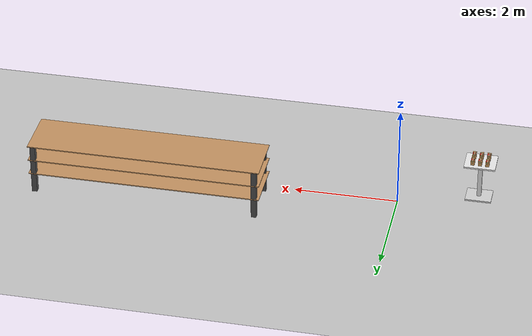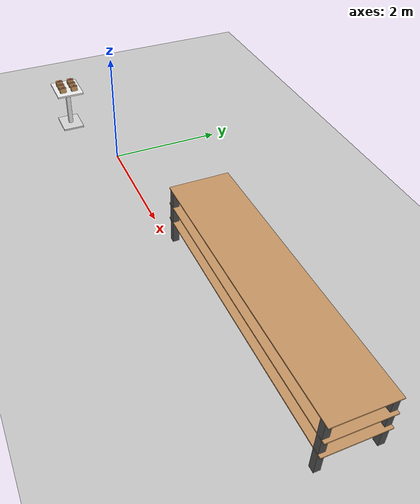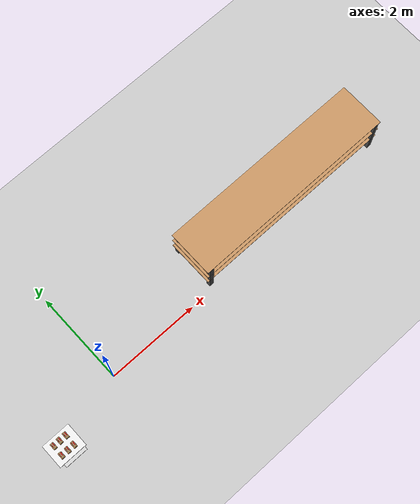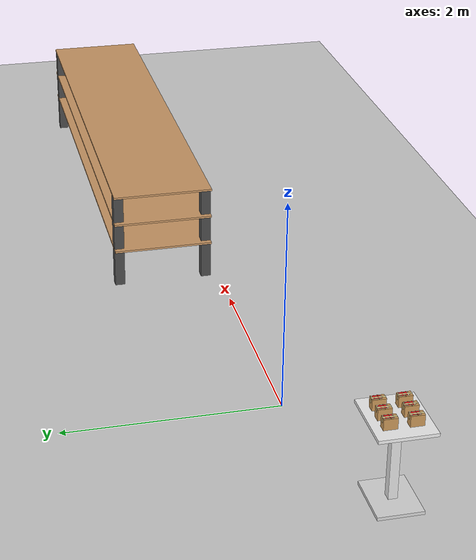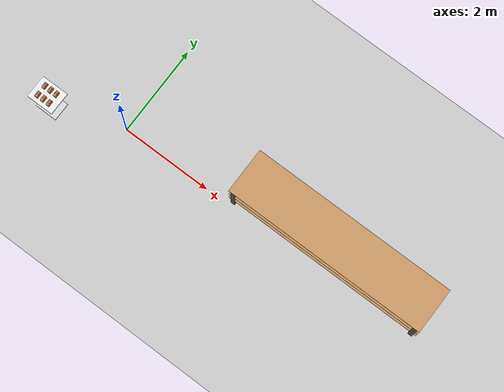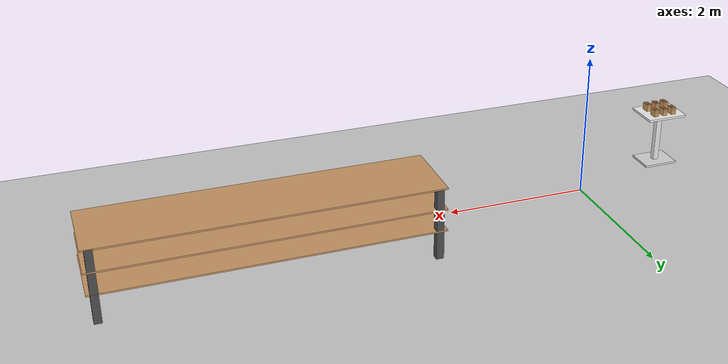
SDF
<sdf version="1.6">
 <world name="default">
  <scene>
   <shadows>true</shadows>
   <ambient>0.5 0.5 0.55 1</ambient>
   <background>0.53 0.67 0.82 1</background>
   <grid>false</grid>
  </scene>
  <model name="drop_shelf">
   <static>true</static>
   <pose>4.73156 0.57943 0 0 0 0</pose>
   <link name="tier_1">
    <pose>0 0 0.4 0 0 0</pose>
    <visual name="visual">
     <geometry><box><size>4.5 1.0 0.02</size></box></geometry>
     <material><ambient>0.8 0.6 0.4 1</ambient><diffuse>0.8 0.6 0.4 1</diffuse></material>
    </visual>
    <collision name="collision"><geometry><box><size>4.5 1.0 0.02</size></box></geometry></collision>
   </link>
   <link name="tier_2">
    <pose>0 0 0.7 0 0 0</pose>
    <visual name="visual">
     <geometry><box><size>4.5 1.0 0.02</size></box></geometry>
     <material><ambient>0.8 0.6 0.4 1</ambient><diffuse>0.8 0.6 0.4 1</diffuse></material>
    </visual>
    <collision name="collision"><geometry><box><size>4.5 1.0 0.02</size></box></geometry></collision>
   </link>
   <link name="tier_3">
    <pose>0 0 1.0 0 0 0</pose>
    <visual name="visual">
     <geometry><box><size>4.5 1.0 0.02</size></box></geometry>
     <material><ambient>0.8 0.6 0.4 1</ambient><diffuse>0.8 0.6 0.4 1</diffuse></material>
    </visual>
    <collision name="collision"><geometry><box><size>4.5 1.0 0.02</size></box></geometry></collision>
   </link>
   <link name="leg_1">
    <pose>2.15 0.45 0.5 0 0 0</pose>
    <visual name="visual">
     <geometry><box><size>0.1 0.1 1.0</size></box></geometry>
     <material><ambient>0.3 0.3 0.3 1</ambient></material>
    </visual>
    <collision name="collision"><geometry><box><size>0.1 0.1 1.0</size></box></geometry></collision>
   </link>
   <link name="leg_2">
    <pose>-2.15 0.45 0.5 0 0 0</pose>
    <visual name="visual">
     <geometry><box><size>0.1 0.1 1.0</size></box></geometry>
     <material><ambient>0.3 0.3 0.3 1</ambient></material>
    </visual>
    <collision name="collision"><geometry><box><size>0.1 0.1 1.0</size></box></geometry></collision>
   </link>
   <link name="leg_3">
    <pose>2.15 -0.45 0.5 0 0 0</pose>
    <visual name="visual">
     <geometry><box><size>0.1 0.1 1.0</size></box></geometry>
     <material><ambient>0.3 0.3 0.3 1</ambient></material>
    </visual>
    <collision name="collision"><geometry><box><size>0.1 0.1 1.0</size></box></geometry></collision>
   </link>
   <link name="leg_4">
    <pose>-2.15 -0.45 0.5 0 0 0</pose>
    <visual name="visual">
     <geometry><box><size>0.1 0.1 1.0</size></box></geometry>
     <material><ambient>0.3 0.3 0.3 1</ambient></material>
    </visual>
    <collision name="collision"><geometry><box><size>0.1 0.1 1.0</size></box></geometry></collision>
   </link>
  </model>
  <model name="pick_table">
   <static>true</static>
   <pose>-1.5 -0.5 0 0 0 0</pose>
   <link name="table_top">
    <pose>0 0 0.785 0 0 0</pose>
    <visual name="visual">
     <geometry><box><size>0.6 0.5 0.03</size></box></geometry>
     <material>
      <ambient>0.95 0.95 0.95 1</ambient>
      <diffuse>0.95 0.95 0.95 1</diffuse>
      <specular>0.3 0.3 0.3 1</specular>
     </material>
    </visual>
    <collision name="collision"><geometry><box><size>0.6 0.5 0.03</size></box></geometry></collision>
   </link>
   <link name="leg_center">
    <pose>0 0 0.39 0 0 0</pose>
    <visual name="visual">
     <geometry><box><size>0.08 0.08 0.78</size></box></geometry>
     <material>
      <ambient>0.9 0.9 0.9 1</ambient>
      <diffuse>0.9 0.9 0.9 1</diffuse>
      <specular>0.3 0.3 0.3 1</specular>
     </material>
    </visual>
    <collision name="collision"><geometry><box><size>0.08 0.08 0.78</size></box></geometry></collision>
   </link>
   <link name="table_base">
    <pose>0 0 0.015 0 0 0</pose>
    <visual name="visual">
     <geometry><box><size>0.5 0.4 0.03</size></box></geometry>
     <material>
      <ambient>0.85 0.85 0.85 1</ambient>
      <diffuse>0.85 0.85 0.85 1</diffuse>
      <specular>0.2 0.2 0.2 1</specular>
     </material>
    </visual>
    <collision name="collision"><geometry><box><size>0.5 0.4 0.03</size></box></geometry></collision>
   </link>
  </model>
  <include>
   <uri>model://parcel_box</uri>
   <name>parcel_box_f1</name>
   <pose>-1.640 -0.610 0.85 0 0 0</pose>
  </include>
  <include>
   <uri>model://parcel_box</uri>
   <name>parcel_box_f2</name>
   <pose>-1.500 -0.610 0.85 0 0 0</pose>
  </include>
  <include>
   <uri>model://parcel_box</uri>
   <name>parcel_box_f3</name>
   <pose>-1.360 -0.610 0.85 0 0 0</pose>
  </include>
  <include>
   <uri>model://parcel_box</uri>
   <name>parcel_box_b1</name>
   <pose>-1.640 -0.390 0.85 0 0 0</pose>
  </include>
  <include>
   <uri>model://parcel_box</uri>
   <name>parcel_box_b2</name>
   <pose>-1.500 -0.390 0.85 0 0 0</pose>
  </include>
  <include>
   <uri>model://parcel_box</uri>
   <name>parcel_box_b3</name>
   <pose>-1.360 -0.390 0.85 0 0 0</pose>
  </include>
  <light name="Warehouse_CeilingLight_003" type="point">
   <pose>0 0 9 0 0 0</pose>
   <diffuse>0.9 0.9 0.9 1</diffuse>
   <specular>0.5 0.5 0.5 1</specular>
   <attenuation>
    <range>800</range>
    <constant>0.1</constant>
    <linear>0.005</linear>
    <quadratic>0.0005</quadratic>
   </attenuation>
   <cast_shadows>false</cast_shadows>
   <direction>0.0 0.0 -1</direction>
  </light>
  <light type="directional" name="sun">
   <pose>0 0 10 0 0 0</pose>
   <diffuse>1.0 0.98 0.92 1</diffuse>
   <specular>0.5 0.5 0.45 1</specular>
   <attenuation>
    <range>1000</range>
    <constant>0.9</constant>
    <linear>0.01</linear>
    <quadratic>0.001</quadratic>
   </attenuation>
   <direction>-0.3 0.1 -0.9</direction>
  </light>
  <model name="ground_plane">
   <static>true</static>
   <link name="link">
    <collision name="collision"><geometry><plane><normal>0 0 1</normal></plane></geometry></collision>
    <visual name="visual">
     <geometry><plane><normal>0 0 1</normal><size>100 100</size></plane></geometry>
     <material>
      <ambient>0.8 0.8 0.8 1</ambient>
      <diffuse>0.8 0.8 0.8 1</diffuse>
      <specular>0.8 0.8 0.8 1</specular>
     </material>
    </visual>
   </link>
  </model>
 </world>
</sdf>

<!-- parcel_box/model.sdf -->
<sdf version="1.6">
  <model name="parcel_box">

    <link name="link">

      <!-- ฟิสิกส์: กล่องพัสดุ 0.3 kg  7×12×10 cm -->
      <inertial>
        <mass>0.3</mass>
        <inertia>
          <!-- ixx = m*(d²+h²)/12 = 0.3*(0.12²+0.10²)/12 -->
          <ixx>0.000610</ixx>
          <ixy>0</ixy><ixz>0</ixz>
          <!-- iyy = m*(w²+h²)/12 = 0.3*(0.07²+0.10²)/12 -->
          <iyy>0.000373</iyy>
          <iyz>0</iyz>
          <!-- izz = m*(w²+d²)/12 = 0.3*(0.07²+0.12²)/12 -->
          <izz>0.000483</izz>
        </inertia>
      </inertial>

      <!-- ── 1. ตัวกล่องหลัก: cardboard brown ── -->
      <visual name="box_body">
        <geometry><box><size>0.07 0.12 0.10</size></box></geometry>
        <material>
          <ambient>0.72 0.52 0.28 1</ambient>
          <diffuse>0.80 0.60 0.35 1</diffuse>
          <specular>0.04 0.04 0.02 1</specular>
        </material>
      </visual>

      <!-- ── 2. พื้น label สีขาว (กระดาษ) บนหน้าบน ── -->
      <visual name="label_paper">
        <pose>0.005 0.01 0.0503 0 0 0</pose>
        <geometry><box><size>0.054 0.082 0.001</size></box></geometry>
        <material>
          <ambient>0.96 0.94 0.90 1</ambient>
          <diffuse>0.98 0.96 0.92 1</diffuse>
          <specular>0.15 0.15 0.15 1</specular>
        </material>
      </visual>

      <!-- ── 3. label สีแดง (shipping label) บนหน้าบน ── -->
      <visual name="label_red">
        <pose>0.005 0.01 0.0506 0 0 0</pose>
        <geometry><box><size>0.046 0.070 0.001</size></box></geometry>
        <material>
          <ambient>0.82 0.06 0.06 1</ambient>
          <diffuse>0.95 0.10 0.10 1</diffuse>
          <specular>0.12 0.05 0.05 1</specular>
        </material>
      </visual>

      <!-- ── 4. เทปกาว แนว Y บนหน้าบน (front→back) ── -->
      <visual name="tape_top">
        <pose>0 0 0.0509 0 0 0</pose>
        <geometry><box><size>0.018 0.122 0.001</size></box></geometry>
        <material>
          <ambient>0.88 0.80 0.55 1</ambient>
          <diffuse>0.90 0.83 0.58 1</diffuse>
          <specular>0.50 0.45 0.25 1</specular>
        </material>
      </visual>

      <!-- ── 5. เทปกาวลงหน้า front face (y = -0.06) ── -->
      <visual name="tape_front">
        <pose>0 -0.0601 0.028 1.5708 0 0</pose>
        <geometry><box><size>0.018 0.044 0.001</size></box></geometry>
        <material>
          <ambient>0.88 0.80 0.55 1</ambient>
          <diffuse>0.90 0.83 0.58 1</diffuse>
          <specular>0.50 0.45 0.25 1</specular>
        </material>
      </visual>

      <!-- ── 6. เทปกาวลงหน้า back face (y = +0.06) ── -->
      <visual name="tape_back">
        <pose>0 0.0601 0.028 -1.5708 0 0</pose>
        <geometry><box><size>0.018 0.044 0.001</size></box></geometry>
        <material>
          <ambient>0.88 0.80 0.55 1</ambient>
          <diffuse>0.90 0.83 0.58 1</diffuse>
          <specular>0.50 0.45 0.25 1</specular>
        </material>
      </visual>

      <!-- ── 7. รอยพับฝากล่อง (center seam) แนว X ── -->
      <visual name="seam_top">
        <pose>0 0 0.0507 0 0 0</pose>
        <geometry><box><size>0.072 0.003 0.001</size></box></geometry>
        <material>
          <ambient>0.50 0.34 0.16 1</ambient>
          <diffuse>0.52 0.36 0.18 1</diffuse>
          <specular>0.0 0.0 0.0 1</specular>
        </material>
      </visual>

      <!-- ── 8. address label ที่หน้ากล่อง front face ── -->
      <visual name="address_label">
        <pose>0 -0.0602 0.020 1.5708 0 0</pose>
        <geometry><box><size>0.038 0.028 0.001</size></box></geometry>
        <material>
          <ambient>0.95 0.93 0.88 1</ambient>
          <diffuse>0.97 0.95 0.90 1</diffuse>
          <specular>0.10 0.10 0.10 1</specular>
        </material>
      </visual>

      <!-- ── Collision ── -->
      <collision name="collision">
        <geometry><box><size>0.07 0.12 0.10</size></box></geometry>
        <surface>
          <friction>
            <ode><mu>0.9</mu><mu2>0.9</mu2></ode>
          </friction>
          <contact>
            <ode>
              <kp>1000000.0</kp>
              <kd>10.0</kd>
              <min_depth>0.001</min_depth>
            </ode>
          </contact>
        </surface>
      </collision>

    </link>
  </model>
</sdf>
